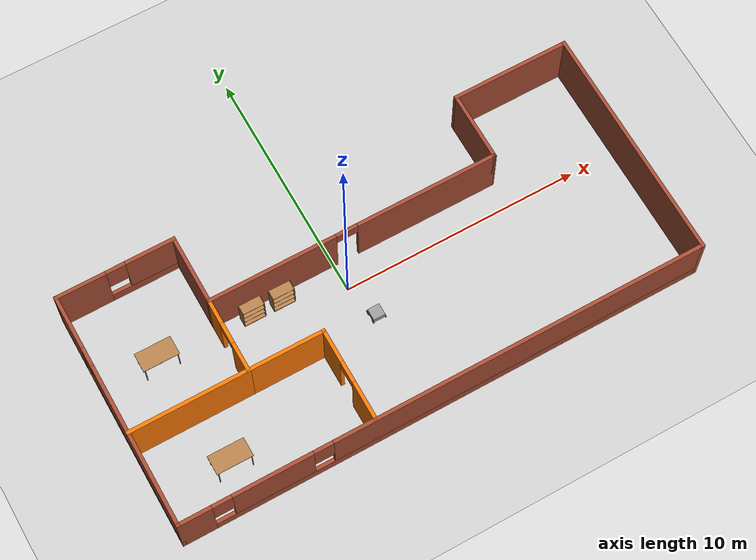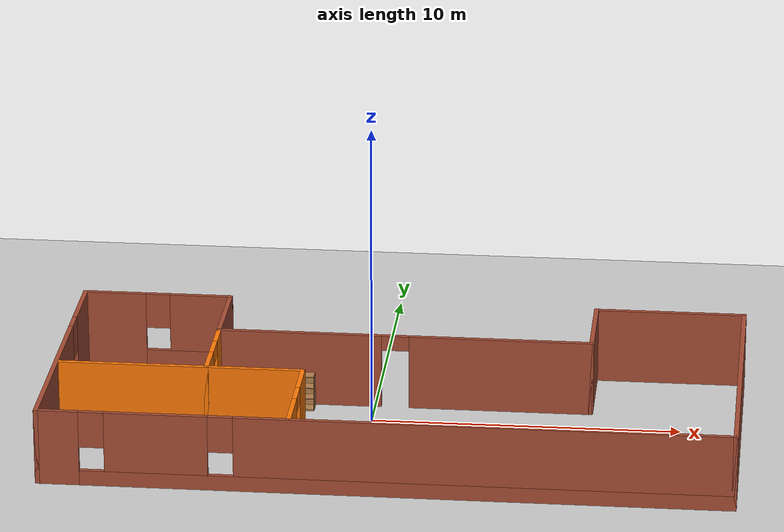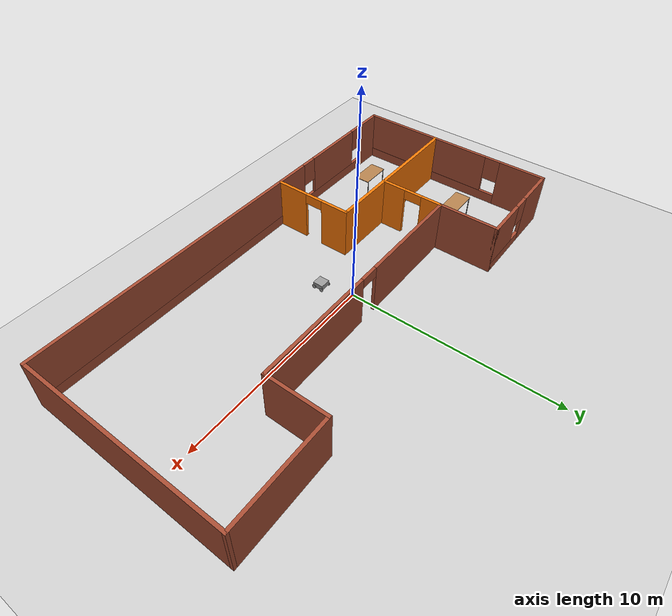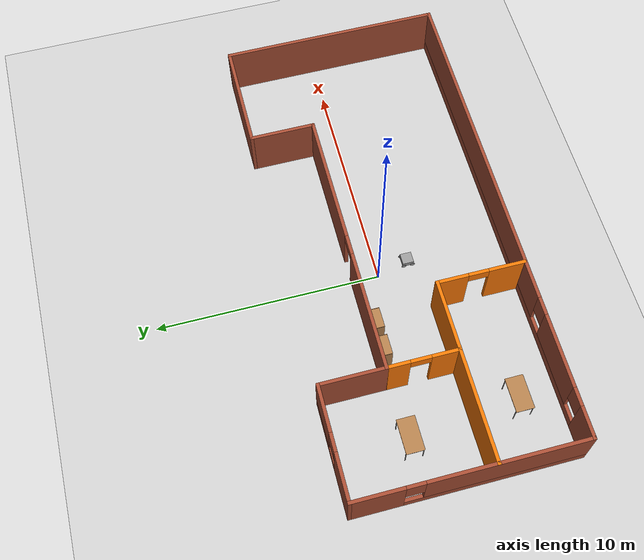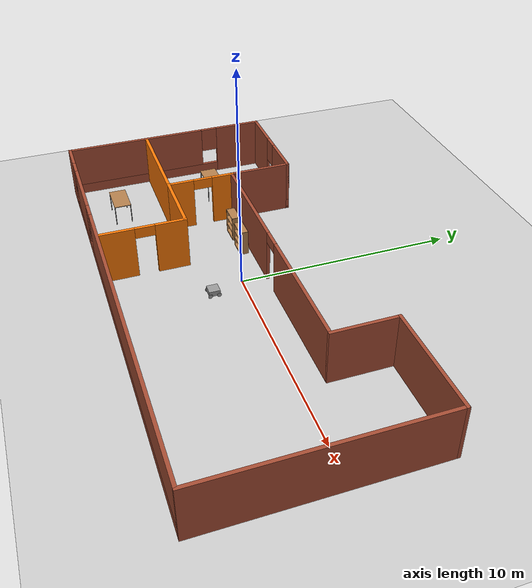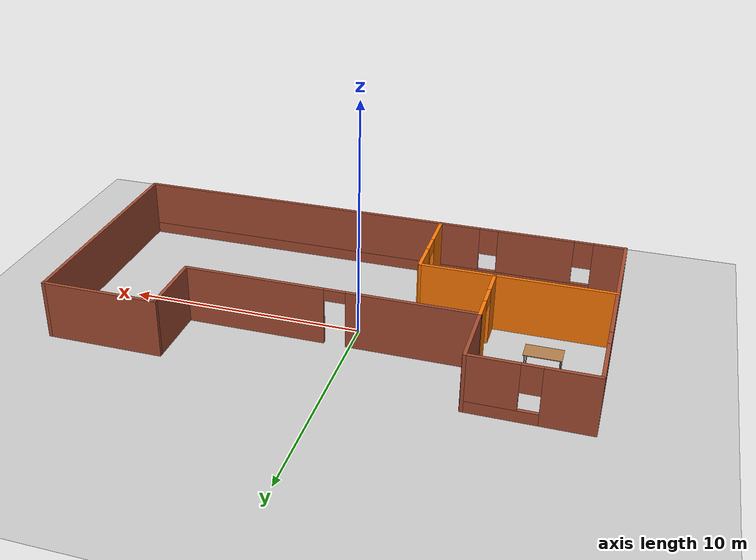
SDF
<sdf version="1.7">
 <world name="default">
  <model name="ground_plane">
   <static>1</static>
   <link name="link">
    <collision name="collision">
     <geometry><plane><normal>0 0 1</normal><size>100 100</size></plane></geometry>
     <surface>
      <contact><collide_bitmask>65535</collide_bitmask></contact>
      <friction><ode><mu>100</mu><mu2>50</mu2></ode></friction>
     </surface>
    </collision>
    <visual name="visual">
     <cast_shadows>0</cast_shadows>
     <geometry><plane><normal>0 0 1</normal><size>100 100</size></plane></geometry>
     <material>
      <script><uri>file://media/materials/scripts/gazebo.material</uri><name>Gazebo/Grey</name></script>
     </material>
    </visual>
   </link>
  </model>
  <model name="building1">
   <pose>0.94843 -0.891606 0 0 -0 0</pose>
   <link name="Wall_1">
    <pose>-10.925 0 0 0 -0 -1.5708</pose>
    <visual name="Wall_1_Visual_0">
     <pose>-3.84405 0 1.25 0 -0 0</pose>
     <geometry><box><size>2.31189 0.15 2.5</size></box></geometry>
     <material>
      <script><uri>file://media/materials/scripts/gazebo.material</uri><name>Gazebo/Bricks</name></script>
      <ambient>1 1 1 1</ambient>
     </material>
     <meta><layer>0</layer></meta>
    </visual>
    <collision name="Wall_1_Collision_0">
     <geometry><box><size>2.31189 0.15 2.5</size></box></geometry>
     <pose>-3.84405 0 1.25 0 -0 0</pose>
    </collision>
    <visual name="Wall_1_Visual_1">
     <pose>1.15595 0 0.25 0 -0 0</pose>
     <geometry><box><size>7.68811 0.15 0.5</size></box></geometry>
     <material>
      <script><uri>file://media/materials/scripts/gazebo.material</uri><name>Gazebo/Bricks</name></script>
      <ambient>1 1 1 1</ambient>
     </material>
     <meta><layer>0</layer></meta>
    </visual>
    <collision name="Wall_1_Collision_1">
     <geometry><box><size>7.68811 0.15 0.5</size></box></geometry>
     <pose>1.15595 0 0.25 0 -0 0</pose>
    </collision>
    <visual name="Wall_1_Visual_2">
     <pose>1.55594 0 1.5 0 -0 0</pose>
     <geometry><box><size>6.88811 0.15 2</size></box></geometry>
     <material>
      <script><uri>file://media/materials/scripts/gazebo.material</uri><name>Gazebo/Bricks</name></script>
      <ambient>1 1 1 1</ambient>
     </material>
     <meta><layer>0</layer></meta>
    </visual>
    <collision name="Wall_1_Collision_2">
     <geometry><box><size>6.88811 0.15 2</size></box></geometry>
     <pose>1.55594 0 1.5 0 -0 0</pose>
    </collision>
    <visual name="Wall_1_Visual_3">
     <pose>-2.28811 0 1.9 0 -0 0</pose>
     <geometry><box><size>0.8 0.15 1.2</size></box></geometry>
     <material>
      <script><uri>file://media/materials/scripts/gazebo.material</uri><name>Gazebo/Bricks</name></script>
      <ambient>1 1 1 1</ambient>
     </material>
     <meta><layer>0</layer></meta>
    </visual>
    <collision name="Wall_1_Collision_3">
     <geometry><box><size>0.8 0.15 1.2</size></box></geometry>
     <pose>-2.28811 0 1.9 0 -0 0</pose>
    </collision>
   </link>
   <link name="Wall_11">
    <pose>-6.075 0.525 0 0 -0 -1.5708</pose>
    <visual name="Wall_11_Visual_0">
     <pose>-1.08635 0 1.25 0 -0 0</pose>
     <geometry><box><size>1.07729 0.15 2.5</size></box></geometry>
     <material>
      <script><uri>file://media/materials/scripts/gazebo.material</uri><name>Gazebo/Grey</name></script>
      <ambient>0.996078 0.47451 0.0196078 1</ambient>
     </material>
     <meta><layer>0</layer></meta>
    </visual>
    <collision name="Wall_11_Collision_0">
     <geometry><box><size>1.07729 0.15 2.5</size></box></geometry>
     <pose>-1.08635 0 1.25 0 -0 0</pose>
    </collision>
    <visual name="Wall_11_Visual_1">
     <pose>0.988647 0 1.25 0 -0 0</pose>
     <geometry><box><size>1.27271 0.15 2.5</size></box></geometry>
     <material>
      <script><uri>file://media/materials/scripts/gazebo.material</uri><name>Gazebo/Grey</name></script>
      <ambient>0.996078 0.47451 0.0196078 1</ambient>
     </material>
     <meta><layer>0</layer></meta>
    </visual>
    <collision name="Wall_11_Collision_1">
     <geometry><box><size>1.27271 0.15 2.5</size></box></geometry>
     <pose>0.988647 0 1.25 0 -0 0</pose>
    </collision>
    <visual name="Wall_11_Visual_2">
     <pose>-0.097707 0 2.25 0 -0 0</pose>
     <geometry><box><size>0.9 0.15 0.5</size></box></geometry>
     <material>
      <script><uri>file://media/materials/scripts/gazebo.material</uri><name>Gazebo/Grey</name></script>
      <ambient>0.996078 0.47451 0.0196078 1</ambient>
     </material>
     <meta><layer>0</layer></meta>
    </visual>
    <collision name="Wall_11_Collision_2">
     <geometry><box><size>0.9 0.15 0.5</size></box></geometry>
     <pose>-0.097707 0 2.25 0 -0 0</pose>
    </collision>
   </link>
   <link name="Wall_12">
    <collision name="Wall_12_Collision">
     <geometry><box><size>3.25 0.15 2.5</size></box></geometry>
     <pose>0 0 1.25 0 -0 0</pose>
    </collision>
    <visual name="Wall_12_Visual">
     <pose>0 0 1.25 0 -0 0</pose>
     <geometry><box><size>3.25 0.15 2.5</size></box></geometry>
     <material>
      <script><uri>file://media/materials/scripts/gazebo.material</uri><name>Gazebo/Grey</name></script>
      <ambient>0.996078 0.47451 0.0196078 1</ambient>
     </material>
     <meta><layer>0</layer></meta>
    </visual>
    <pose>-4.525 -1.025 0 0 -0 0</pose>
   </link>
   <link name="Wall_13">
    <pose>-2.975 -2.95 0 0 -0 -1.5708</pose>
    <visual name="Wall_13_Visual_0">
     <pose>-1.27656 0 1.25 0 -0 0</pose>
     <geometry><box><size>1.44688 0.15 2.5</size></box></geometry>
     <material>
      <script><uri>file://media/materials/scripts/gazebo.material</uri><name>Gazebo/Grey</name></script>
      <ambient>0.996078 0.47451 0.0196078 1</ambient>
     </material>
     <meta><layer>0</layer></meta>
    </visual>
    <collision name="Wall_13_Collision_0">
     <geometry><box><size>1.44688 0.15 2.5</size></box></geometry>
     <pose>-1.27656 0 1.25 0 -0 0</pose>
    </collision>
    <visual name="Wall_13_Visual_1">
     <pose>1.17344 0 1.25 0 -0 0</pose>
     <geometry><box><size>1.65312 0.15 2.5</size></box></geometry>
     <material>
      <script><uri>file://media/materials/scripts/gazebo.material</uri><name>Gazebo/Grey</name></script>
      <ambient>0.996078 0.47451 0.0196078 1</ambient>
     </material>
     <meta><layer>0</layer></meta>
    </visual>
    <collision name="Wall_13_Collision_1">
     <geometry><box><size>1.65312 0.15 2.5</size></box></geometry>
     <pose>1.17344 0 1.25 0 -0 0</pose>
    </collision>
    <visual name="Wall_13_Visual_2">
     <pose>-0.103116 0 2.25 0 -0 0</pose>
     <geometry><box><size>0.9 0.15 0.5</size></box></geometry>
     <material>
      <script><uri>file://media/materials/scripts/gazebo.material</uri><name>Gazebo/Grey</name></script>
      <ambient>0.996078 0.47451 0.0196078 1</ambient>
     </material>
     <meta><layer>0</layer></meta>
    </visual>
    <collision name="Wall_13_Collision_2">
     <geometry><box><size>0.9 0.15 0.5</size></box></geometry>
     <pose>-0.103116 0 2.25 0 -0 0</pose>
    </collision>
   </link>
   <link name="Wall_15">
    <collision name="Wall_15_Collision">
     <geometry><box><size>5 0.15 2.5</size></box></geometry>
     <pose>0 0 1.25 0 -0 0</pose>
    </collision>
    <visual name="Wall_15_Visual">
     <pose>0 0 1.25 0 -0 0</pose>
     <geometry><box><size>5 0.15 2.5</size></box></geometry>
     <material>
      <script><uri>file://media/materials/scripts/gazebo.material</uri><name>Gazebo/Grey</name></script>
      <ambient>0.996078 0.47451 0.0196078 1</ambient>
     </material>
     <meta><layer>0</layer></meta>
    </visual>
    <pose>-8.5 -1.025 0 0 -0 3.14159</pose>
   </link>
   <link name="Wall_2">
    <pose>-0 -4.925 0 0 -0 0</pose>
    <visual name="Wall_2_Visual_0">
     <pose>-10.2951 0 1.25 0 -0 0</pose>
     <geometry><box><size>1.4098 0.15 2.5</size></box></geometry>
     <material>
      <script><uri>file://media/materials/scripts/gazebo.material</uri><name>Gazebo/Bricks</name></script>
      <ambient>1 1 1 1</ambient>
     </material>
     <meta><layer>0</layer></meta>
    </visual>
    <collision name="Wall_2_Collision_0">
     <geometry><box><size>1.4098 0.15 2.5</size></box></geometry>
     <pose>-10.2951 0 1.25 0 -0 0</pose>
    </collision>
    <visual name="Wall_2_Visual_1">
     <pose>0.704898 0 0.25 0 -0 0</pose>
     <geometry><box><size>20.5902 0.15 0.5</size></box></geometry>
     <material>
      <script><uri>file://media/materials/scripts/gazebo.material</uri><name>Gazebo/Bricks</name></script>
      <ambient>1 1 1 1</ambient>
     </material>
     <meta><layer>0</layer></meta>
    </visual>
    <collision name="Wall_2_Collision_1">
     <geometry><box><size>20.5902 0.15 0.5</size></box></geometry>
     <pose>0.704898 0 0.25 0 -0 0</pose>
    </collision>
    <visual name="Wall_2_Visual_2">
     <pose>-7.15471 0 1.5 0 -0 0</pose>
     <geometry><box><size>3.27099 0.15 2</size></box></geometry>
     <material>
      <script><uri>file://media/materials/scripts/gazebo.material</uri><name>Gazebo/Bricks</name></script>
      <ambient>1 1 1 1</ambient>
     </material>
     <meta><layer>0</layer></meta>
    </visual>
    <collision name="Wall_2_Collision_2">
     <geometry><box><size>3.27099 0.15 2</size></box></geometry>
     <pose>-7.15471 0 1.5 0 -0 0</pose>
    </collision>
    <visual name="Wall_2_Visual_3">
     <pose>3.14039 0 1.5 0 -0 0</pose>
     <geometry><box><size>15.7192 0.15 2</size></box></geometry>
     <material>
      <script><uri>file://media/materials/scripts/gazebo.material</uri><name>Gazebo/Bricks</name></script>
      <ambient>1 1 1 1</ambient>
     </material>
     <meta><layer>0</layer></meta>
    </visual>
    <collision name="Wall_2_Collision_3">
     <geometry><box><size>15.7192 0.15 2</size></box></geometry>
     <pose>3.14039 0 1.5 0 -0 0</pose>
    </collision>
    <visual name="Wall_2_Visual_4">
     <pose>-9.1902 0 1.9 0 -0 0</pose>
     <geometry><box><size>0.8 0.15 1.2</size></box></geometry>
     <material>
      <script><uri>file://media/materials/scripts/gazebo.material</uri><name>Gazebo/Bricks</name></script>
      <ambient>1 1 1 1</ambient>
     </material>
     <meta><layer>0</layer></meta>
    </visual>
    <collision name="Wall_2_Collision_4">
     <geometry><box><size>0.8 0.15 1.2</size></box></geometry>
     <pose>-9.1902 0 1.9 0 -0 0</pose>
    </collision>
    <visual name="Wall_2_Visual_5">
     <pose>-5.11922 0 1.9 0 -0 0</pose>
     <geometry><box><size>0.8 0.15 1.2</size></box></geometry>
     <material>
      <script><uri>file://media/materials/scripts/gazebo.material</uri><name>Gazebo/Bricks</name></script>
      <ambient>1 1 1 1</ambient>
     </material>
     <meta><layer>0</layer></meta>
    </visual>
    <collision name="Wall_2_Collision_5">
     <geometry><box><size>0.8 0.15 1.2</size></box></geometry>
     <pose>-5.11922 0 1.9 0 -0 0</pose>
    </collision>
   </link>
   <link name="Wall_3">
    <collision name="Wall_3_Collision">
     <geometry><box><size>10 0.15 2.5</size></box></geometry>
     <pose>0 0 1.25 0 -0 0</pose>
    </collision>
    <visual name="Wall_3_Visual">
     <pose>0 0 1.25 0 -0 0</pose>
     <geometry><box><size>10 0.15 2.5</size></box></geometry>
     <material>
      <script><uri>file://media/materials/scripts/gazebo.material</uri><name>Gazebo/Bricks</name></script>
      <ambient>1 1 1 1</ambient>
     </material>
     <meta><layer>0</layer></meta>
    </visual>
    <pose>10.925 0 0 0 -0 1.5708</pose>
   </link>
   <link name="Wall_4">
    <collision name="Wall_4_Collision">
     <geometry><box><size>5 0.15 2.5</size></box></geometry>
     <pose>0 0 1.25 0 -0 0</pose>
    </collision>
    <visual name="Wall_4_Visual">
     <pose>0 0 1.25 0 -0 0</pose>
     <geometry><box><size>5 0.15 2.5</size></box></geometry>
     <material>
      <script><uri>file://media/materials/scripts/gazebo.material</uri><name>Gazebo/Bricks</name></script>
      <ambient>1 1 1 1</ambient>
     </material>
     <meta><layer>0</layer></meta>
    </visual>
    <pose>8.5 4.925 0 0 -0 3.14159</pose>
   </link>
   <link name="Wall_5">
    <collision name="Wall_5_Collision">
     <geometry><box><size>3 0.15 2.5</size></box></geometry>
     <pose>0 0 1.25 0 -0 0</pose>
    </collision>
    <visual name="Wall_5_Visual">
     <pose>0 0 1.25 0 -0 0</pose>
     <geometry><box><size>3 0.15 2.5</size></box></geometry>
     <material>
      <script><uri>file://media/materials/scripts/gazebo.material</uri><name>Gazebo/Bricks</name></script>
      <ambient>1 1 1 1</ambient>
     </material>
     <meta><layer>0</layer></meta>
    </visual>
    <pose>6.075 3.5 0 0 -0 -1.5708</pose>
   </link>
   <link name="Wall_7">
    <pose>-8.5 4.925 0 0 -0 0</pose>
    <visual name="Wall_7_Visual_0">
     <pose>-1.44814 0 1.25 0 -0 0</pose>
     <geometry><box><size>2.10371 0.15 2.5</size></box></geometry>
     <material>
      <script><uri>file://media/materials/scripts/gazebo.material</uri><name>Gazebo/Bricks</name></script>
      <ambient>1 1 1 1</ambient>
     </material>
     <meta><layer>0</layer></meta>
    </visual>
    <collision name="Wall_7_Collision_0">
     <geometry><box><size>2.10371 0.15 2.5</size></box></geometry>
     <pose>-1.44814 0 1.25 0 -0 0</pose>
    </collision>
    <visual name="Wall_7_Visual_1">
     <pose>1.05186 0 0.25 0 -0 0</pose>
     <geometry><box><size>2.89629 0.15 0.5</size></box></geometry>
     <material>
      <script><uri>file://media/materials/scripts/gazebo.material</uri><name>Gazebo/Bricks</name></script>
      <ambient>1 1 1 1</ambient>
     </material>
     <meta><layer>0</layer></meta>
    </visual>
    <collision name="Wall_7_Collision_1">
     <geometry><box><size>2.89629 0.15 0.5</size></box></geometry>
     <pose>1.05186 0 0.25 0 -0 0</pose>
    </collision>
    <visual name="Wall_7_Visual_2">
     <pose>1.45186 0 1.5 0 -0 0</pose>
     <geometry><box><size>2.09629 0.15 2</size></box></geometry>
     <material>
      <script><uri>file://media/materials/scripts/gazebo.material</uri><name>Gazebo/Bricks</name></script>
      <ambient>1 1 1 1</ambient>
     </material>
     <meta><layer>0</layer></meta>
    </visual>
    <collision name="Wall_7_Collision_2">
     <geometry><box><size>2.09629 0.15 2</size></box></geometry>
     <pose>1.45186 0 1.5 0 -0 0</pose>
    </collision>
    <visual name="Wall_7_Visual_3">
     <pose>0.003714 0 1.9 0 -0 0</pose>
     <geometry><box><size>0.8 0.15 1.2</size></box></geometry>
     <material>
      <script><uri>file://media/materials/scripts/gazebo.material</uri><name>Gazebo/Bricks</name></script>
      <ambient>1 1 1 1</ambient>
     </material>
     <meta><layer>0</layer></meta>
    </visual>
    <collision name="Wall_7_Collision_3">
     <geometry><box><size>0.8 0.15 1.2</size></box></geometry>
     <pose>0.003714 0 1.9 0 -0 0</pose>
    </collision>
   </link>
   <link name="Wall_8">
    <collision name="Wall_8_Collision">
     <geometry><box><size>3 0.15 2.5</size></box></geometry>
     <pose>0 0 1.25 0 -0 0</pose>
    </collision>
    <visual name="Wall_8_Visual">
     <pose>0 0 1.25 0 -0 0</pose>
     <geometry><box><size>3 0.15 2.5</size></box></geometry>
     <material>
      <script><uri>file://media/materials/scripts/gazebo.material</uri><name>Gazebo/Bricks</name></script>
      <ambient>1 1 1 1</ambient>
     </material>
     <meta><layer>0</layer></meta>
    </visual>
    <pose>-6.075 3.5 0 0 -0 -1.5708</pose>
   </link>
   <link name="Wall_9">
    <pose>-0.025 2.075 0 0 -0 0</pose>
    <visual name="Wall_9_Visual_0">
     <pose>-3.42903 0 1.25 0 -0 0</pose>
     <geometry><box><size>5.39195 0.15 2.5</size></box></geometry>
     <material>
      <script><uri>file://media/materials/scripts/gazebo.material</uri><name>Gazebo/Bricks</name></script>
      <ambient>1 1 1 1</ambient>
     </material>
     <meta><layer>0</layer></meta>
    </visual>
    <collision name="Wall_9_Collision_0">
     <geometry><box><size>5.39195 0.15 2.5</size></box></geometry>
     <pose>-3.42903 0 1.25 0 -0 0</pose>
    </collision>
    <visual name="Wall_9_Visual_1">
     <pose>3.14597 0 1.25 0 -0 0</pose>
     <geometry><box><size>5.95805 0.15 2.5</size></box></geometry>
     <material>
      <script><uri>file://media/materials/scripts/gazebo.material</uri><name>Gazebo/Bricks</name></script>
      <ambient>1 1 1 1</ambient>
     </material>
     <meta><layer>0</layer></meta>
    </visual>
    <collision name="Wall_9_Collision_1">
     <geometry><box><size>5.95805 0.15 2.5</size></box></geometry>
     <pose>3.14597 0 1.25 0 -0 0</pose>
    </collision>
    <visual name="Wall_9_Visual_2">
     <pose>-0.283051 0 2.25 0 -0 0</pose>
     <geometry><box><size>0.9 0.15 0.5</size></box></geometry>
     <material>
      <script><uri>file://media/materials/scripts/gazebo.material</uri><name>Gazebo/Bricks</name></script>
      <ambient>1 1 1 1</ambient>
     </material>
     <meta><layer>0</layer></meta>
    </visual>
    <collision name="Wall_9_Collision_2">
     <geometry><box><size>0.9 0.15 0.5</size></box></geometry>
     <pose>-0.283051 0 2.25 0 -0 0</pose>
    </collision>
   </link>
   <static>1</static>
  </model>
  <model name="bookshelf">
   <static>1</static>
   <link name="link">
    <inertial><mass>1</mass></inertial>
    <collision name="back">
     <pose>0 0.005 0.6 0 -0 0</pose>
     <geometry><box><size>0.9 0.01 1.2</size></box></geometry>
    </collision>
    <visual name="visual1">
     <pose>0 0.005 0.6 0 -0 0</pose>
     <geometry><box><size>0.9 0.01 1.2</size></box></geometry>
     <material>
      <script><uri>file://media/materials/scripts/gazebo.material</uri><name>Gazebo/Wood</name></script>
     </material>
    </visual>
    <collision name="left_side">
     <pose>0.45 -0.195 0.6 0 -0 0</pose>
     <geometry><box><size>0.02 0.4 1.2</size></box></geometry>
    </collision>
    <visual name="visual2">
     <pose>0.45 -0.195 0.6 0 -0 0</pose>
     <geometry><box><size>0.02 0.4 1.2</size></box></geometry>
     <material>
      <script><uri>file://media/materials/scripts/gazebo.material</uri><name>Gazebo/Wood</name></script>
     </material>
    </visual>
    <collision name="right_side">
     <pose>-0.45 -0.195 0.6 0 -0 0</pose>
     <geometry><box><size>0.02 0.4 1.2</size></box></geometry>
    </collision>
    <visual name="visual3">
     <pose>-0.45 -0.195 0.6 0 -0 0</pose>
     <geometry><box><size>0.02 0.4 1.2</size></box></geometry>
     <material>
      <script><uri>file://media/materials/scripts/gazebo.material</uri><name>Gazebo/Wood</name></script>
     </material>
    </visual>
    <collision name="bottom">
     <pose>0 -0.195 0.03 0 -0 0</pose>
     <geometry><box><size>0.88 0.4 0.06</size></box></geometry>
    </collision>
    <visual name="visual4">
     <pose>0 -0.195 0.03 0 -0 0</pose>
     <geometry><box><size>0.88 0.4 0.06</size></box></geometry>
     <material>
      <script><uri>file://media/materials/scripts/gazebo.material</uri><name>Gazebo/Wood</name></script>
     </material>
    </visual>
    <collision name="top">
     <pose>0 -0.195 1.19 0 -0 0</pose>
     <geometry><box><size>0.88 0.4 0.02</size></box></geometry>
    </collision>
    <visual name="visual5">
     <pose>0 -0.195 1.19 0 -0 0</pose>
     <geometry><box><size>0.88 0.4 0.02</size></box></geometry>
     <material>
      <script><uri>file://media/materials/scripts/gazebo.material</uri><name>Gazebo/Wood</name></script>
     </material>
    </visual>
    <collision name="low_shelf">
     <pose>0 -0.195 0.43 0 -0 0</pose>
     <geometry><box><size>0.88 0.4 0.02</size></box></geometry>
    </collision>
    <visual name="visual6">
     <pose>0 -0.195 0.43 0 -0 0</pose>
     <geometry><box><size>0.88 0.4 0.02</size></box></geometry>
     <material>
      <script><uri>file://media/materials/scripts/gazebo.material</uri><name>Gazebo/Wood</name></script>
     </material>
    </visual>
    <collision name="high_shelf">
     <pose>0 -0.195 0.8 0 -0 0</pose>
     <geometry><box><size>0.88 0.4 0.02</size></box></geometry>
    </collision>
    <visual name="visual7">
     <pose>0 -0.195 0.8 0 -0 0</pose>
     <geometry><box><size>0.88 0.4 0.02</size></box></geometry>
     <material>
      <script><uri>file://media/materials/scripts/gazebo.material</uri><name>Gazebo/Wood</name></script>
     </material>
    </visual>
   </link>
   <pose>-3.67466 0.963506 0 0 -0 0</pose>
  </model>
  <model name="bookshelf_0">
   <static>1</static>
   <link name="link">
    <inertial><mass>1</mass></inertial>
    <collision name="back">
     <pose>0 0.005 0.6 0 -0 0</pose>
     <geometry><box><size>0.9 0.01 1.2</size></box></geometry>
    </collision>
    <visual name="visual1">
     <pose>0 0.005 0.6 0 -0 0</pose>
     <geometry><box><size>0.9 0.01 1.2</size></box></geometry>
     <material>
      <script><uri>file://media/materials/scripts/gazebo.material</uri><name>Gazebo/Wood</name></script>
     </material>
    </visual>
    <collision name="left_side">
     <pose>0.45 -0.195 0.6 0 -0 0</pose>
     <geometry><box><size>0.02 0.4 1.2</size></box></geometry>
    </collision>
    <visual name="visual2">
     <pose>0.45 -0.195 0.6 0 -0 0</pose>
     <geometry><box><size>0.02 0.4 1.2</size></box></geometry>
     <material>
      <script><uri>file://media/materials/scripts/gazebo.material</uri><name>Gazebo/Wood</name></script>
     </material>
    </visual>
    <collision name="right_side">
     <pose>-0.45 -0.195 0.6 0 -0 0</pose>
     <geometry><box><size>0.02 0.4 1.2</size></box></geometry>
    </collision>
    <visual name="visual3">
     <pose>-0.45 -0.195 0.6 0 -0 0</pose>
     <geometry><box><size>0.02 0.4 1.2</size></box></geometry>
     <material>
      <script><uri>file://media/materials/scripts/gazebo.material</uri><name>Gazebo/Wood</name></script>
     </material>
    </visual>
    <collision name="bottom">
     <pose>0 -0.195 0.03 0 -0 0</pose>
     <geometry><box><size>0.88 0.4 0.06</size></box></geometry>
    </collision>
    <visual name="visual4">
     <pose>0 -0.195 0.03 0 -0 0</pose>
     <geometry><box><size>0.88 0.4 0.06</size></box></geometry>
     <material>
      <script><uri>file://media/materials/scripts/gazebo.material</uri><name>Gazebo/Wood</name></script>
     </material>
    </visual>
    <collision name="top">
     <pose>0 -0.195 1.19 0 -0 0</pose>
     <geometry><box><size>0.88 0.4 0.02</size></box></geometry>
    </collision>
    <visual name="visual5">
     <pose>0 -0.195 1.19 0 -0 0</pose>
     <geometry><box><size>0.88 0.4 0.02</size></box></geometry>
     <material>
      <script><uri>file://media/materials/scripts/gazebo.material</uri><name>Gazebo/Wood</name></script>
     </material>
    </visual>
    <collision name="low_shelf">
     <pose>0 -0.195 0.43 0 -0 0</pose>
     <geometry><box><size>0.88 0.4 0.02</size></box></geometry>
    </collision>
    <visual name="visual6">
     <pose>0 -0.195 0.43 0 -0 0</pose>
     <geometry><box><size>0.88 0.4 0.02</size></box></geometry>
     <material>
      <script><uri>file://media/materials/scripts/gazebo.material</uri><name>Gazebo/Wood</name></script>
     </material>
    </visual>
    <collision name="high_shelf">
     <pose>0 -0.195 0.8 0 -0 0</pose>
     <geometry><box><size>0.88 0.4 0.02</size></box></geometry>
    </collision>
    <visual name="visual7">
     <pose>0 -0.195 0.8 0 -0 0</pose>
     <geometry><box><size>0.88 0.4 0.02</size></box></geometry>
     <material>
      <script><uri>file://media/materials/scripts/gazebo.material</uri><name>Gazebo/Wood</name></script>
     </material>
    </visual>
   </link>
   <pose>-2.41323 0.949971 0 0 -0 0</pose>
  </model>
  <model name="table_1">
   <static>1</static>
   <link name="link">
    <collision name="surface">
     <pose>0 0 1 0 -0 0</pose>
     <geometry><box><size>1.5 0.8 0.03</size></box></geometry>
     <surface><friction><ode><mu>0.6</mu><mu2>0.6</mu2></ode></friction></surface>
    </collision>
    <visual name="visual1">
     <pose>0 0 1 0 -0 0</pose>
     <geometry><box><size>1.5 0.8 0.03</size></box></geometry>
     <material>
      <script><uri>file://media/materials/scripts/gazebo.material</uri><name>Gazebo/Wood</name></script>
     </material>
    </visual>
    <collision name="front_left_leg">
     <pose>0.68 0.38 0.5 0 -0 0</pose>
     <geometry><cylinder><radius>0.02</radius><length>1</length></cylinder></geometry>
    </collision>
    <visual name="front_left_leg">
     <pose>0.68 0.38 0.5 0 -0 0</pose>
     <geometry><cylinder><radius>0.02</radius><length>1</length></cylinder></geometry>
     <material>
      <script><uri>file://media/materials/scripts/gazebo.material</uri><name>Gazebo/Grey</name></script>
     </material>
    </visual>
    <collision name="front_right_leg">
     <pose>0.68 -0.38 0.5 0 -0 0</pose>
     <geometry><cylinder><radius>0.02</radius><length>1</length></cylinder></geometry>
    </collision>
    <visual name="front_right_leg">
     <pose>0.68 -0.38 0.5 0 -0 0</pose>
     <geometry><cylinder><radius>0.02</radius><length>1</length></cylinder></geometry>
     <material>
      <script><uri>file://media/materials/scripts/gazebo.material</uri><name>Gazebo/Grey</name></script>
     </material>
    </visual>
    <collision name="back_right_leg">
     <pose>-0.68 -0.38 0.5 0 -0 0</pose>
     <geometry><cylinder><radius>0.02</radius><length>1</length></cylinder></geometry>
    </collision>
    <visual name="back_right_leg">
     <pose>-0.68 -0.38 0.5 0 -0 0</pose>
     <geometry><cylinder><radius>0.02</radius><length>1</length></cylinder></geometry>
     <material>
      <script><uri>file://media/materials/scripts/gazebo.material</uri><name>Gazebo/Grey</name></script>
     </material>
    </visual>
    <collision name="back_left_leg">
     <pose>-0.68 0.38 0.5 0 -0 0</pose>
     <geometry><cylinder><radius>0.02</radius><length>1</length></cylinder></geometry>
    </collision>
    <visual name="back_left_leg">
     <pose>-0.68 0.38 0.5 0 -0 0</pose>
     <geometry><cylinder><radius>0.02</radius><length>1</length></cylinder></geometry>
     <material>
      <script><uri>file://media/materials/scripts/gazebo.material</uri><name>Gazebo/Grey</name></script>
     </material>
    </visual>
   </link>
   <pose>-7.07568 -4.00827 0 0 -0 0</pose>
  </model>
  <model name="table_2">
   <static>1</static>
   <link name="link">
    <collision name="surface">
     <pose>0 0 1 0 -0 0</pose>
     <geometry><box><size>1.5 0.8 0.03</size></box></geometry>
     <surface><friction><ode><mu>0.6</mu><mu2>0.6</mu2></ode></friction></surface>
    </collision>
    <visual name="visual1">
     <pose>0 0 1 0 -0 0</pose>
     <geometry><box><size>1.5 0.8 0.03</size></box></geometry>
     <material>
      <script><uri>file://media/materials/scripts/gazebo.material</uri><name>Gazebo/Wood</name></script>
     </material>
    </visual>
    <collision name="front_left_leg">
     <pose>0.68 0.38 0.5 0 -0 0</pose>
     <geometry><cylinder><radius>0.02</radius><length>1</length></cylinder></geometry>
    </collision>
    <visual name="front_left_leg">
     <pose>0.68 0.38 0.5 0 -0 0</pose>
     <geometry><cylinder><radius>0.02</radius><length>1</length></cylinder></geometry>
     <material>
      <script><uri>file://media/materials/scripts/gazebo.material</uri><name>Gazebo/Grey</name></script>
     </material>
    </visual>
    <collision name="front_right_leg">
     <pose>0.68 -0.38 0.5 0 -0 0</pose>
     <geometry><cylinder><radius>0.02</radius><length>1</length></cylinder></geometry>
    </collision>
    <visual name="front_right_leg">
     <pose>0.68 -0.38 0.5 0 -0 0</pose>
     <geometry><cylinder><radius>0.02</radius><length>1</length></cylinder></geometry>
     <material>
      <script><uri>file://media/materials/scripts/gazebo.material</uri><name>Gazebo/Grey</name></script>
     </material>
    </visual>
    <collision name="back_right_leg">
     <pose>-0.68 -0.38 0.5 0 -0 0</pose>
     <geometry><cylinder><radius>0.02</radius><length>1</length></cylinder></geometry>
    </collision>
    <visual name="back_right_leg">
     <pose>-0.68 -0.38 0.5 0 -0 0</pose>
     <geometry><cylinder><radius>0.02</radius><length>1</length></cylinder></geometry>
     <material>
      <script><uri>file://media/materials/scripts/gazebo.material</uri><name>Gazebo/Grey</name></script>
     </material>
    </visual>
    <collision name="back_left_leg">
     <pose>-0.68 0.38 0.5 0 -0 0</pose>
     <geometry><cylinder><radius>0.02</radius><length>1</length></cylinder></geometry>
    </collision>
    <visual name="back_left_leg">
     <pose>-0.68 0.38 0.5 0 -0 0</pose>
     <geometry><cylinder><radius>0.02</radius><length>1</length></cylinder></geometry>
     <material>
      <script><uri>file://media/materials/scripts/gazebo.material</uri><name>Gazebo/Grey</name></script>
     </material>
    </visual>
   </link>
   <pose>-7.61434 0.831494 0 0 -0 0</pose>
  </model>
  <model name="four_wheeled_robot_1">
   <link name="link_2">
    <inertial>
     <mass>1</mass>
     <inertia>
      <ixx>0.166667</ixx>
      <ixy>0</ixy>
      <ixz>0</ixz>
      <iyy>0.166667</iyy>
      <iyz>0</iyz>
      <izz>0.166667</izz>
     </inertia>
    </inertial>
    <pose>-9.6e-05 0 0.05 0 -0 0</pose>
    <visual name="visual">
     <geometry><box><size>0.5 0.5 0.25</size></box></geometry>
     <material>
      <lighting>1</lighting>
      <script><uri>file://media/materials/scripts/gazebo.material</uri><name>Gazebo/Grey</name></script>
      <shader type="pixel"><normal_map>__default__</normal_map></shader>
      <ambient>0.3 0.3 0.3 1</ambient>
      <diffuse>0.7 0.7 0.7 1</diffuse>
      <specular>0.01 0.01 0.01 1</specular>
      <emissive>0 0 0 1</emissive>
     </material>
    </visual>
    <collision name="collision">
     <geometry><box><size>0.5 0.5 0.25</size></box></geometry>
     <surface>
      <friction>
       <ode><mu>1</mu><mu2>1</mu2><fdir1>0 0 0</fdir1><slip1>0</slip1><slip2>0</slip2></ode>
       <torsional>
        <coefficient>1</coefficient>
        <patch_radius>0</patch_radius>
        <surface_radius>0</surface_radius>
        <use_patch_radius>1</use_patch_radius>
        <ode><slip>0</slip></ode>
       </torsional>
      </friction>
      <bounce><restitution_coefficient>0</restitution_coefficient><threshold>1e+06</threshold></bounce>
      <contact>
       <collide_without_contact>0</collide_without_contact>
       <collide_without_contact_bitmask>1</collide_without_contact_bitmask>
       <collide_bitmask>1</collide_bitmask>
       <ode>
        <soft_cfm>0</soft_cfm>
        <soft_erp>0.2</soft_erp>
        <kp>1e+13</kp>
        <kd>1</kd>
        <max_vel>0.01</max_vel>
        <min_depth>0</min_depth>
       </ode>
       <bullet>
        <split_impulse>1</split_impulse>
        <split_impulse_penetration_threshold>-0.01</split_impulse_penetration_threshold>
        <soft_cfm>0</soft_cfm>
        <soft_erp>0.2</soft_erp>
        <kp>1e+13</kp>
        <kd>1</kd>
       </bullet>
      </contact>
     </surface>
    </collision>
   </link>
   <link name="link_3">
    <inertial>
     <mass>1</mass>
     <inertia><ixx>0.145833</ixx><ixy>0</ixy><ixz>0</ixz><iyy>0.145833</iyy><iyz>0</iyz><izz>0.125</izz></inertia>
    </inertial>
    <pose>0.260404 -0.2 -0.05 1.5707 0 1.5707</pose>
    <visual name="visual">
     <geometry><cylinder><radius>0.1</radius><length>0.02</length></cylinder></geometry>
     <material>
      <lighting>1</lighting>
      <script><uri>file://media/materials/scripts/gazebo.material</uri><name>Gazebo/Grey</name></script>
      <shader type="pixel"><normal_map>__default__</normal_map></shader>
      <ambient>0.3 0.3 0.3 1</ambient>
      <diffuse>0.7 0.7 0.7 1</diffuse>
      <specular>0.01 0.01 0.01 1</specular>
      <emissive>0 0 0 1</emissive>
     </material>
    </visual>
    <collision name="collision">
     <geometry><cylinder><radius>0.1</radius><length>0.02</length></cylinder></geometry>
     <surface>
      <friction>
       <ode><mu>1</mu><mu2>1</mu2><fdir1>0 0 0</fdir1><slip1>0</slip1><slip2>0</slip2></ode>
       <torsional>
        <coefficient>1</coefficient>
        <patch_radius>0</patch_radius>
        <surface_radius>0</surface_radius>
        <use_patch_radius>1</use_patch_radius>
        <ode><slip>0</slip></ode>
       </torsional>
      </friction>
      <bounce><restitution_coefficient>0</restitution_coefficient><threshold>1e+06</threshold></bounce>
      <contact>
       <collide_without_contact>0</collide_without_contact>
       <collide_without_contact_bitmask>1</collide_without_contact_bitmask>
       <collide_bitmask>1</collide_bitmask>
       <ode>
        <soft_cfm>0</soft_cfm>
        <soft_erp>0.2</soft_erp>
        <kp>1e+13</kp>
        <kd>1</kd>
        <max_vel>0.01</max_vel>
        <min_depth>0</min_depth>
       </ode>
       <bullet>
        <split_impulse>1</split_impulse>
        <split_impulse_penetration_threshold>-0.01</split_impulse_penetration_threshold>
        <soft_cfm>0</soft_cfm>
        <soft_erp>0.2</soft_erp>
        <kp>1e+13</kp>
        <kd>1</kd>
       </bullet>
      </contact>
     </surface>
    </collision>
   </link>
   <link name="link_3_clone">
    <inertial>
     <mass>1</mass>
     <inertia><ixx>0.145833</ixx><ixy>0</ixy><ixz>0</ixz><iyy>0.145833</iyy><iyz>0</iyz><izz>0.125</izz></inertia>
    </inertial>
    <pose>-0.260115 0.2 -0.05 1.5707 0 1.5707</pose>
    <visual name="visual">
     <geometry><cylinder><radius>0.1</radius><length>0.02</length></cylinder></geometry>
     <material>
      <lighting>1</lighting>
      <script><uri>file://media/materials/scripts/gazebo.material</uri><name>Gazebo/Grey</name></script>
      <shader type="pixel"><normal_map>__default__</normal_map></shader>
      <ambient>0.3 0.3 0.3 1</ambient>
      <diffuse>0.7 0.7 0.7 1</diffuse>
      <specular>0.01 0.01 0.01 1</specular>
      <emissive>0 0 0 1</emissive>
     </material>
    </visual>
    <collision name="collision">
     <geometry><cylinder><radius>0.1</radius><length>0.02</length></cylinder></geometry>
     <surface>
      <friction>
       <ode><mu>1</mu><mu2>1</mu2><fdir1>0 0 0</fdir1><slip1>0</slip1><slip2>0</slip2></ode>
       <torsional>
        <coefficient>1</coefficient>
        <patch_radius>0</patch_radius>
        <surface_radius>0</surface_radius>
        <use_patch_radius>1</use_patch_radius>
        <ode><slip>0</slip></ode>
       </torsional>
      </friction>
      <bounce><restitution_coefficient>0</restitution_coefficient><threshold>1e+06</threshold></bounce>
      <contact>
       <collide_without_contact>0</collide_without_contact>
       <collide_without_contact_bitmask>1</collide_without_contact_bitmask>
       <collide_bitmask>1</collide_bitmask>
       <ode>
        <soft_cfm>0</soft_cfm>
        <soft_erp>0.2</soft_erp>
        <kp>1e+13</kp>
        <kd>1</kd>
        <max_vel>0.01</max_vel>
        <min_depth>0</min_depth>
       </ode>
       <bullet>
        <split_impulse>1</split_impulse>
        <split_impulse_penetration_threshold>-0.01</split_impulse_penetration_threshold>
        <soft_cfm>0</soft_cfm>
        <soft_erp>0.2</soft_erp>
        <kp>1e+13</kp>
        <kd>1</kd>
       </bullet>
      </contact>
     </surface>
    </collision>
   </link>
   <link name="link_3_clone_0">
    <inertial>
     <mass>1</mass>
     <inertia><ixx>0.145833</ixx><ixy>0</ixy><ixz>0</ixz><iyy>0.145833</iyy><iyz>0</iyz><izz>0.125</izz></inertia>
    </inertial>
    <pose>-0.260115 -0.2 -0.05 1.5707 0 1.5707</pose>
    <visual name="visual">
     <geometry><cylinder><radius>0.1</radius><length>0.02</length></cylinder></geometry>
     <material>
      <lighting>1</lighting>
      <script><uri>file://media/materials/scripts/gazebo.material</uri><name>Gazebo/Grey</name></script>
      <shader type="pixel"><normal_map>__default__</normal_map></shader>
      <ambient>0.3 0.3 0.3 1</ambient>
      <diffuse>0.7 0.7 0.7 1</diffuse>
      <specular>0.01 0.01 0.01 1</specular>
      <emissive>0 0 0 1</emissive>
     </material>
    </visual>
    <collision name="collision">
     <geometry><cylinder><radius>0.1</radius><length>0.02</length></cylinder></geometry>
     <surface>
      <friction>
       <ode><mu>1</mu><mu2>1</mu2><fdir1>0 0 0</fdir1><slip1>0</slip1><slip2>0</slip2></ode>
       <torsional>
        <coefficient>1</coefficient>
        <patch_radius>0</patch_radius>
        <surface_radius>0</surface_radius>
        <use_patch_radius>1</use_patch_radius>
        <ode><slip>0</slip></ode>
       </torsional>
      </friction>
      <bounce><restitution_coefficient>0</restitution_coefficient><threshold>1e+06</threshold></bounce>
      <contact>
       <collide_without_contact>0</collide_without_contact>
       <collide_without_contact_bitmask>1</collide_without_contact_bitmask>
       <collide_bitmask>1</collide_bitmask>
       <ode>
        <soft_cfm>0</soft_cfm>
        <soft_erp>0.2</soft_erp>
        <kp>1e+13</kp>
        <kd>1</kd>
        <max_vel>0.01</max_vel>
        <min_depth>0</min_depth>
       </ode>
       <bullet>
        <split_impulse>1</split_impulse>
        <split_impulse_penetration_threshold>-0.01</split_impulse_penetration_threshold>
        <soft_cfm>0</soft_cfm>
        <soft_erp>0.2</soft_erp>
        <kp>1e+13</kp>
        <kd>1</kd>
       </bullet>
      </contact>
     </surface>
    </collision>
   </link>
   <link name="link_3_clone_1">
    <inertial>
     <mass>1</mass>
     <inertia><ixx>0.145833</ixx><ixy>0</ixy><ixz>0</ixz><iyy>0.145833</iyy><iyz>0</iyz><izz>0.125</izz></inertia>
    </inertial>
    <pose>0.259923 0.2 -0.05 1.5707 0 1.5707</pose>
    <visual name="visual">
     <geometry><cylinder><radius>0.1</radius><length>0.02</length></cylinder></geometry>
     <material>
      <lighting>1</lighting>
      <script><uri>file://media/materials/scripts/gazebo.material</uri><name>Gazebo/Grey</name></script>
      <shader type="pixel"><normal_map>__default__</normal_map></shader>
      <ambient>0.3 0.3 0.3 1</ambient>
      <diffuse>0.7 0.7 0.7 1</diffuse>
      <specular>0.01 0.01 0.01 1</specular>
      <emissive>0 0 0 1</emissive>
     </material>
    </visual>
    <collision name="collision">
     <geometry><cylinder><radius>0.1</radius><length>0.02</length></cylinder></geometry>
     <surface>
      <friction>
       <ode><mu>1</mu><mu2>1</mu2><fdir1>0 0 0</fdir1><slip1>0</slip1><slip2>0</slip2></ode>
       <torsional>
        <coefficient>1</coefficient>
        <patch_radius>0</patch_radius>
        <surface_radius>0</surface_radius>
        <use_patch_radius>1</use_patch_radius>
        <ode><slip>0</slip></ode>
       </torsional>
      </friction>
      <bounce><restitution_coefficient>0</restitution_coefficient><threshold>1e+06</threshold></bounce>
      <contact>
       <collide_without_contact>0</collide_without_contact>
       <collide_without_contact_bitmask>1</collide_without_contact_bitmask>
       <collide_bitmask>1</collide_bitmask>
       <ode>
        <soft_cfm>0</soft_cfm>
        <soft_erp>0.2</soft_erp>
        <kp>1e+13</kp>
        <kd>1</kd>
        <max_vel>0.01</max_vel>
        <min_depth>0</min_depth>
       </ode>
       <bullet>
        <split_impulse>1</split_impulse>
        <split_impulse_penetration_threshold>-0.01</split_impulse_penetration_threshold>
        <soft_cfm>0</soft_cfm>
        <soft_erp>0.2</soft_erp>
        <kp>1e+13</kp>
        <kd>1</kd>
       </bullet>
      </contact>
     </surface>
    </collision>
   </link>
   <joint name="link_2_JOINT_0" type="revolute">
    <parent>link_2</parent>
    <child>link_3</child>
    <axis>
     <xyz>0 0 1</xyz>
     <limit>
      <lower>-1.79769e+308</lower>
      <upper>1.79769e+308</upper>
      <effort>-1</effort>
      <velocity>-1</velocity>
     </limit>
     <dynamics>
      <spring_reference>0</spring_reference>
      <spring_stiffness>0</spring_stiffness>
      <damping>0</damping>
      <friction>0</friction>
     </dynamics>
    </axis>
    <physics>
     <ode><limit><cfm>0</cfm><erp>0.2</erp></limit><suspension><cfm>0</cfm><erp>0.2</erp></suspension></ode>
    </physics>
   </joint>
   <joint name="link_2_JOINT_1" type="revolute">
    <parent>link_2</parent>
    <child>link_3_clone_1</child>
    <axis>
     <xyz>0 0 1</xyz>
     <limit>
      <lower>-1.79769e+308</lower>
      <upper>1.79769e+308</upper>
      <effort>-1</effort>
      <velocity>-1</velocity>
     </limit>
     <dynamics>
      <spring_reference>0</spring_reference>
      <spring_stiffness>0</spring_stiffness>
      <damping>0</damping>
      <friction>0</friction>
     </dynamics>
    </axis>
    <physics>
     <ode><limit><cfm>0</cfm><erp>0.2</erp></limit><suspension><cfm>0</cfm><erp>0.2</erp></suspension></ode>
    </physics>
   </joint>
   <joint name="link_2_JOINT_2" type="revolute">
    <parent>link_2</parent>
    <child>link_3_clone_0</child>
    <axis>
     <xyz>0 0 1</xyz>
     <limit>
      <lower>-1.79769e+308</lower>
      <upper>1.79769e+308</upper>
      <effort>-1</effort>
      <velocity>-1</velocity>
     </limit>
     <dynamics>
      <spring_reference>0</spring_reference>
      <spring_stiffness>0</spring_stiffness>
      <damping>0</damping>
     </dynamics>
    </axis>
    <physics>
     <ode><limit><cfm>0</cfm><erp>0.2</erp></limit><suspension><cfm>0</cfm><erp>0.2</erp></suspension></ode>
    </physics>
   </joint>
   <joint name="link_2_JOINT_3" type="revolute">
    <parent>link_2</parent>
    <child>link_3_clone</child>
    <axis>
     <xyz>0 0 1</xyz>
     <limit>
      <lower>-1.79769e+308</lower>
      <upper>1.79769e+308</upper>
      <effort>-1</effort>
      <velocity>-1</velocity>
     </limit>
     <dynamics>
      <spring_reference>0</spring_reference>
      <spring_stiffness>0</spring_stiffness>
      <damping>0</damping>
     </dynamics>
    </axis>
    <physics>
     <ode><limit><cfm>0</cfm><erp>0.2</erp></limit><suspension><cfm>0</cfm><erp>0.2</erp></suspension></ode>
    </physics>
   </joint>
   <static>0</static>
   <pose>0.435391 -1.43925 0.149999 7e-06 -0 0.005949</pose>
  </model>
 </world>
</sdf>
